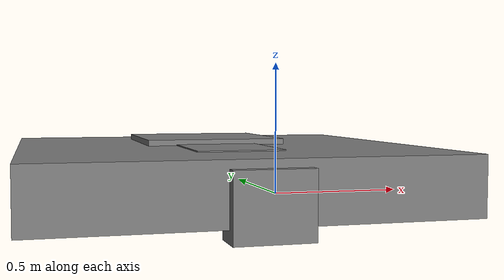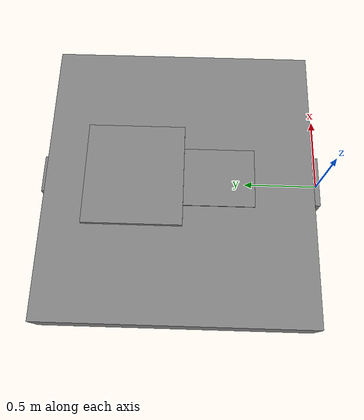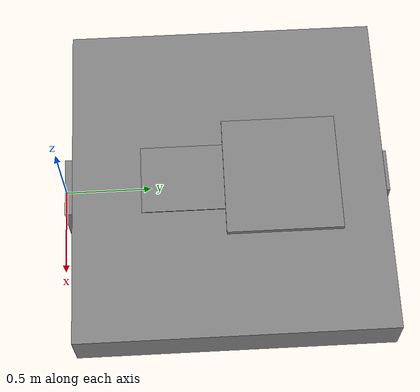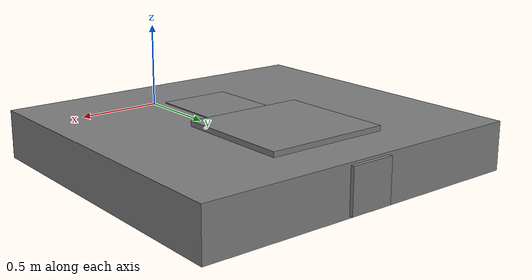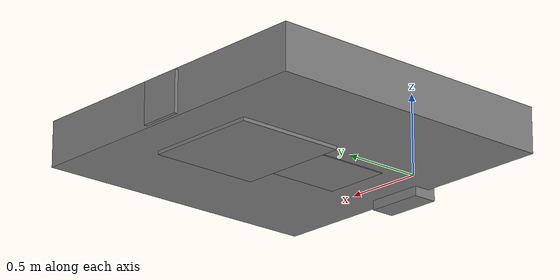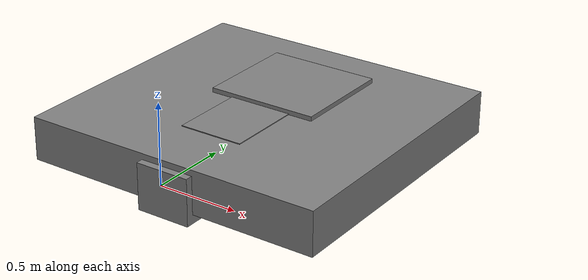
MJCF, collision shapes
<?xml version="1.0" ?>
<mujoco>
	<asset>
		<mesh name="Remy" content_type="model/obj" file="usd:Remy.usdc" scale="0.005 0.005 0.005"/>
	</asset>
	<worldbody>
		<body name="base">
			<freejoint name="base_joint"/>
			<inertial pos="0 0 0" mass="1.0"/>
			<geom type="mesh" mesh="Remy" contype="0" conaffinity="0"/>
			<body name="root_1547822638883773761" pos="-0.0 0.0 0.0" quat="1.0 -0.0 -0.0 -0.0">
				<body name="Light_1547847997911633677" pos="-0.020381226539611812 0.029519309997558595 0.0050272694213825625" quat="0.570947517361481 -0.1690757554669724 -0.27217138983900635 -0.7558803184930387">
					<body name="Light_6159597694655803377" pos="-0.0 0.0 0.0" quat="1.0 -0.0 -0.0 -0.0"/>
				</body>
				<body name="node_bae55448_7bdc_42c1_8c71_52c5f6dd317e_1547953959364294816" pos="-0.0 0.0 0.0" quat="0.7071068282650276 -0.7071067341080643 -0.0 -0.0">
					<body name="node_Shoes_1546894070285937639" pos="-0.0 0.0 0.0" quat="1.0 -0.0 -0.0 -0.0">
						<body name="node_Shoes_lib_6158546886852638230" pos="-0.0 0.0 0.0" quat="1.0 -0.0 -0.0 -0.0">
							<body name="node_Shoes_lib_mesh0_1546639080112224971" pos="-0.0 0.0 0.0" quat="1.0 -0.0 -0.0 -0.0">
								<body name="geometry_2ac68897_1fc4_49a5_bb3d_69fd9a9534cf_6158198406313752814" pos="-0.0 0.0 0.0" quat="1.0 -0.0 -0.0 -0.0">
									<geom type="box" group="3" density="1000.0" pos="0.004806299209594727 0.05450424194335938 0.07559173205052502" size="0.1732557964324951 0.14729059219360352 0.07555525204981678"/>
								</body>
							</body>
						</body>
					</body>
					<body name="node_Tops_1546196009696604310" pos="-0.0 0.0 0.0" quat="1.0 -0.0 -0.0 -0.0">
						<body name="node_Tops_lib_6157942221031596204" pos="-0.0 0.0 0.0" quat="1.0 -0.0 -0.0 -0.0">
							<body name="node_Tops_lib_mesh0_1546126709531069256" pos="-0.0 0.0 0.0" quat="1.0 -0.0 -0.0 -0.0">
								<body name="geometry_ff8896fd_e95b_43b5_bbd1_911f33c40210_6157778326694358866" pos="-0.0 0.0 0.0" quat="1.0 -0.0 -0.0 -0.0">
									<geom type="box" group="3" density="1000.0" pos="0.007610130310058594 0.002887759208679199 1.2657932281494142" size="0.3553949356079102 0.1625762414932251 0.33577201843261717"/>
								</body>
							</body>
						</body>
					</body>
					<body name="node_Bottoms_1547847994125743983" pos="-0.0 0.0 0.0" quat="1.0 -0.0 -0.0 -0.0">
						<body name="node_Bottoms_lib_6159597689443429201" pos="-0.0 0.0 0.0" quat="1.0 -0.0 -0.0 -0.0">
							<body name="node_Bottoms_lib_mesh0_1547787865226975673" pos="-0.0 0.0 0.0" quat="1.0 -0.0 -0.0 -0.0">
								<body name="geometry_060ef9b1_24d8_45b3_8af9_87bcd7134693_6159442970684637327" pos="-0.0 0.0 0.0" quat="1.0 -0.0 -0.0 -0.0">
									<geom type="box" group="3" density="1000.0" pos="0.001132955551147461 0.006745142936706543 0.7545686149597168" size="0.20525771141052246 0.14275186061859133 0.30735666275024415"/>
								</body>
							</body>
						</body>
					</body>
					<body name="node_Hair_1547397271043653331" pos="-0.0 0.0 0.0" quat="1.0 -0.0 -0.0 -0.0">
						<body name="node_Hair_lib_6158957788058788635" pos="-0.0 0.0 0.0" quat="1.0 -0.0 -0.0 -0.0">
							<body name="node_Hair_lib_mesh0_1547240260516430569" pos="-0.0 0.0 0.0" quat="1.0 -0.0 -0.0 -0.0">
								<body name="geometry_2fbd0d64_d4bd_4ad0_81d3_8a896a8729e0_6158706191966444069" pos="-0.0 0.0 0.0" quat="1.0 -0.0 -0.0 -0.0">
									<geom type="box" group="3" density="1000.0" pos="0.002800850868225098 0.007555117607116699 1.7583829498291017" size="0.1271061658859253 0.12460889339447022 0.1340770721435547"/>
								</body>
							</body>
						</body>
					</body>
					<body name="node_Body_6159702828976780643" pos="-0.0 0.0 0.0" quat="1.0 -0.0 -0.0 -0.0">
						<body name="node_Body_lib_1547611807885077419" pos="-0.0 0.0 0.0" quat="1.0 -0.0 -0.0 -0.0">
							<body name="node_Body_lib_mesh0_6159267191444134497" pos="-0.0 0.0 0.0" quat="1.0 -0.0 -0.0 -0.0">
								<body name="geometry_1716b707_b4d8_4402_a544_b1ad29c653b9_1547361951679300509" pos="-0.0 0.0 0.0" quat="1.0 -0.0 -0.0 -0.0">
									<geom type="box" group="3" density="1000.0" pos="-0.006731643676757813 0.006891393661499024 0.9588739848136902" size="0.9734956359863282 0.13744091033935546 0.9125400471687317"/>
								</body>
							</body>
						</body>
					</body>
					<body name="node_Eyelashes_1547134850543449616" pos="-0.0 0.0 0.0" quat="1.0 -0.0 -0.0 -0.0">
						<body name="node_Eyelashes_lib_6158881977460399215" pos="-0.0 0.0 0.0" quat="1.0 -0.0 -0.0 -0.0">
							<body name="node_Eyelashes_lib_mesh0_1546788114178374482" pos="-0.0 0.0 0.0" quat="1.0 -0.0 -0.0 -0.0">
								<body name="geometry_f624bb72_deae_4a79_bf49_b50778e7656b_6158440655530267812" pos="-0.0 0.0 0.0" quat="1.0 -0.0 -0.0 -0.0">
									<geom type="box" group="3" density="1000.0" pos="-0.00527841567993164 0.10944114685058594 1.7467033386230468" size="0.05308663368225098 0.01 0.01"/>
								</body>
							</body>
						</body>
					</body>
					<body name="node_Eyes_1547988177834666586" pos="-0.0 0.0 0.0" quat="1.0 -0.0 -0.0 -0.0">
						<body name="node_Eyes_lib_6159738969769667004" pos="-0.0 0.0 0.0" quat="1.0 -0.0 -0.0 -0.0">
							<body name="node_Eyes_lib_mesh0_1547646576810828195" pos="-0.0 0.0 0.0" quat="1.0 -0.0 -0.0 -0.0">
								<body name="geometry_a52758c1_e4ee_487a_8b61_bdde7586570f_6159301683685921784" pos="-0.0 0.0 0.0" quat="1.0 -0.0 -0.0 -0.0">
									<geom type="box" group="3" density="1000.0" pos="-0.004926972389221192 0.08995500087738037 1.7508243560791017" size="0.04782784461975098 0.017762303352355957 0.017692947387695314"/>
								</body>
							</body>
						</body>
					</body>
				</body>
			</body>
		</body>
	</worldbody>
</mujoco>
